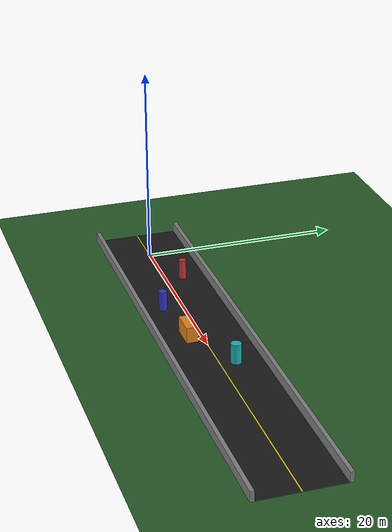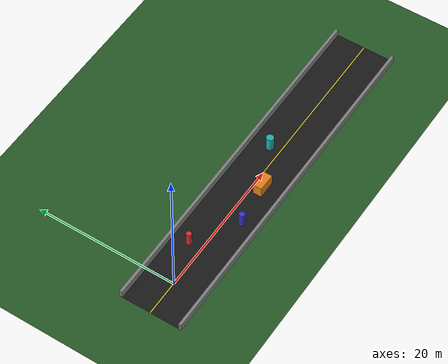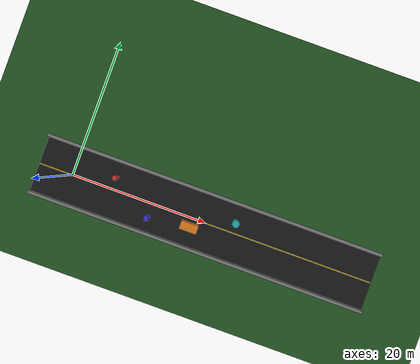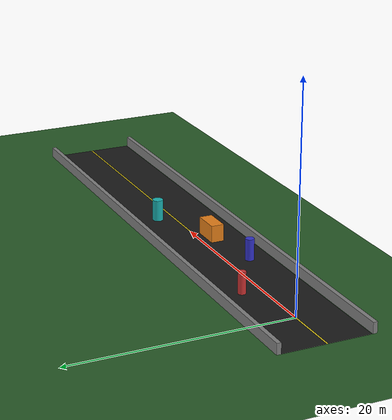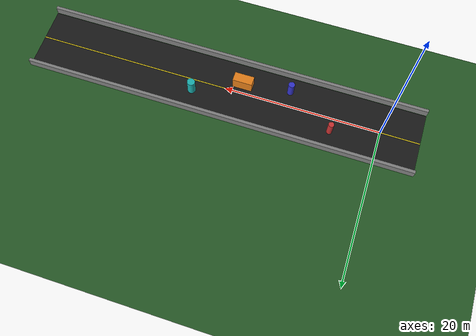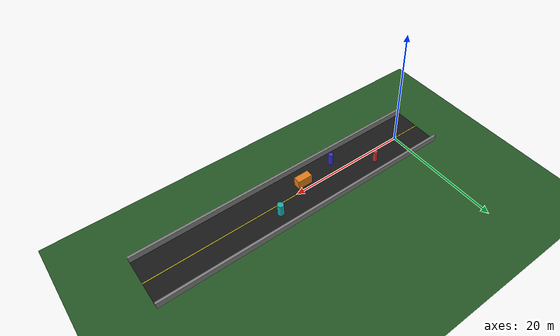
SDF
<?xml version="1.0" ?>
<sdf version="1.9">
  <world name="car_world">

    <!-- Only Core System Plugins -->
    <plugin filename="gz-sim-physics-system" name="gz::sim::systems::Physics"/>
    <plugin filename="gz-sim-user-commands-system" name="gz::sim::systems::UserCommands"/>
    <plugin filename="gz-sim-scene-broadcaster-system" name="gz::sim::systems::SceneBroadcaster"/>

    <physics name="1ms" type="ode">
      <max_step_size>0.001</max_step_size>
      <real_time_factor>1.0</real_time_factor>
      <real_time_update_rate>1000</real_time_update_rate>
    </physics>

    <gravity>0 0 -9.81</gravity>

    <light name="sun" type="directional">
      <cast_shadows>true</cast_shadows>
      <pose>0 0 15 0 0 0</pose>
      <diffuse>0.9 0.9 0.9 1</diffuse>
      <specular>0.2 0.2 0.2 1</specular>
      <direction>-0.5 0.1 -0.9</direction>
    </light>

    <!-- Ground -->
    <model name="ground_grass">
      <static>true</static>
      <link name="link">
        <collision name="collision">
          <geometry><plane><normal>0 0 1</normal><size>100 100</size></plane></geometry>
        </collision>
        <visual name="visual">
          <geometry><plane><normal>0 0 1</normal><size>100 100</size></plane></geometry>
          <material>
            <ambient>0.15 0.35 0.15 1</ambient>
            <diffuse>0.15 0.35 0.15 1</diffuse>
          </material>
        </visual>
      </link>
    </model>

    <!-- Asphalt Road -->
    <model name="asphalt_road">
      <static>true</static>
      <pose>20.0 0 0.005 0 0 0</pose>
      <link name="link">
        <collision name="collision">
          <geometry><box><size>50.0 8.0 0.01</size></box></geometry>
        </collision>
        <visual name="visual">
          <geometry><box><size>50.0 8.0 0.01</size></box></geometry>
          <material>
            <ambient>0.1 0.1 0.1 1</ambient>
            <diffuse>0.1 0.1 0.1 1</diffuse>
          </material>
        </visual>
      </link>
    </model>

    <!-- Yellow Center Line -->
    <model name="road_line_center">
      <static>true</static>
      <pose>20.0 0 0.01 0 0 0</pose>
      <link name="link">
        <visual name="visual">
          <geometry><box><size>50.0 0.15 0.01</size></box></geometry>
          <material>
            <ambient>0.9 0.8 0.1 1</ambient>
            <diffuse>0.9 0.8 0.1 1</diffuse>
          </material>
        </visual>
      </link>
    </model>

    <!-- Side Barriers -->
    <model name="barrier_left">
      <static>true</static>
      <pose>20.0 4.25 0.5 0 0 0</pose>
      <link name="link">
        <collision name="collision">
          <geometry><box><size>50.0 0.4 1.0</size></box></geometry>
        </collision>
        <visual name="visual">
          <geometry><box><size>50.0 0.4 1.0</size></box></geometry>
          <material>
            <ambient>0.5 0.5 0.5 1</ambient>
            <diffuse>0.5 0.5 0.5 1</diffuse>
          </material>
        </visual>
      </link>
    </model>

    <model name="barrier_right">
      <static>true</static>
      <pose>20.0 -4.25 0.5 0 0 0</pose>
      <link name="link">
        <collision name="collision">
          <geometry><box><size>50.0 0.4 1.0</size></box></geometry>
        </collision>
        <visual name="visual">
          <geometry><box><size>50.0 0.4 1.0</size></box></geometry>
          <material>
            <ambient>0.5 0.5 0.5 1</ambient>
            <diffuse>0.5 0.5 0.5 1</diffuse>
          </material>
        </visual>
      </link>
    </model>

    <!-- TALL OBSTACLES FOR NN LIDAR TRAINING                        -->

    <!-- Tall Pillar 1 (Left Lane) -->
    <model name="tall_pillar_left">
      <static>true</static>
      <pose>6.0 1.8 1.0 0 0 0</pose>
      <link name="link">
        <collision name="collision">
          <geometry><cylinder><radius>0.35</radius><length>2.0</length></cylinder></geometry>
        </collision>
        <visual name="visual">
          <geometry><cylinder><radius>0.35</radius><length>2.0</length></cylinder></geometry>
          <material>
            <ambient>0.8 0.2 0.2 1</ambient>
            <diffuse>0.8 0.2 0.2 1</diffuse>
          </material>
        </visual>
      </link>
    </model>

    <!-- Tall Pillar 2 (Right Lane) -->
    <model name="tall_pillar_right">
      <static>true</static>
      <pose>12.0 -2.0 1.0 0 0 0</pose>
      <link name="link">
        <collision name="collision">
          <geometry><cylinder><radius>0.4</radius><length>2.0</length></cylinder></geometry>
        </collision>
        <visual name="visual">
          <geometry><cylinder><radius>0.4</radius><length>2.0</length></cylinder></geometry>
          <material>
            <ambient>0.2 0.2 0.8 1</ambient>
            <diffuse>0.2 0.2 0.8 1</diffuse>
          </material>
        </visual>
      </link>
    </model>

    <!-- Large Parked Box Obstacle (Center-Right) -->
    <model name="parked_obstacle_box">
      <static>true</static>
      <pose>18.0 -1.2 0.8 0 0 0</pose>
      <link name="link">
        <collision name="collision">
          <geometry><box><size>2.5 1.2 1.6</size></box></geometry>
        </collision>
        <visual name="visual">
          <geometry><box><size>2.5 1.2 1.6</size></box></geometry>
          <material>
            <ambient>0.9 0.5 0.1 1</ambient>
            <diffuse>0.9 0.5 0.1 1</diffuse>
          </material>
        </visual>
      </link>
    </model>

    <!-- Tall Barrel (Center-Left) -->
    <model name="tall_barrel">
      <static>true</static>
      <pose>24.0 1.5 1.0 0 0 0</pose>
      <link name="link">
        <collision name="collision">
          <geometry><cylinder><radius>0.5</radius><length>2.0</length></cylinder></geometry>
        </collision>
        <visual name="visual">
          <geometry><cylinder><radius>0.5</radius><length>2.0</length></cylinder></geometry>
          <material>
            <ambient>0.1 0.7 0.7 1</ambient>
            <diffuse>0.1 0.7 0.7 1</diffuse>
          </material>
        </visual>
      </link>
    </model>

  </world>
</sdf>
